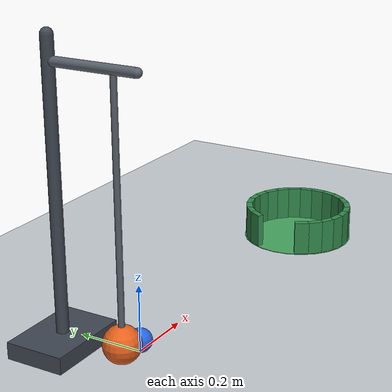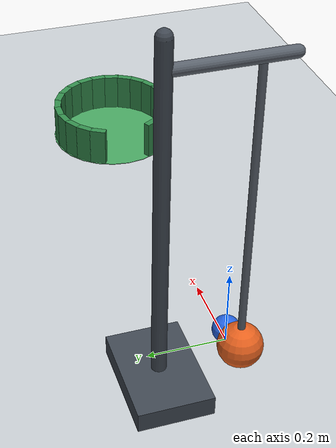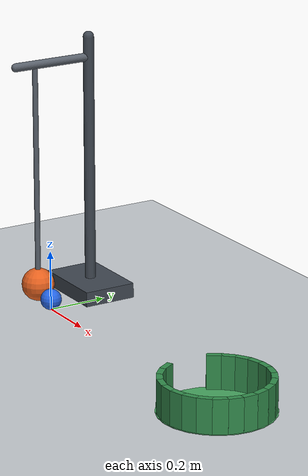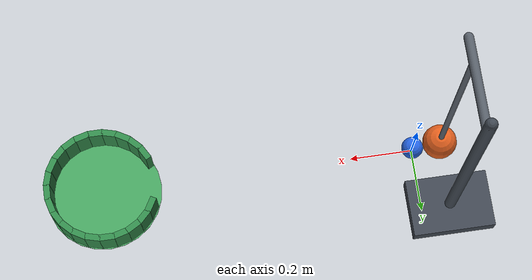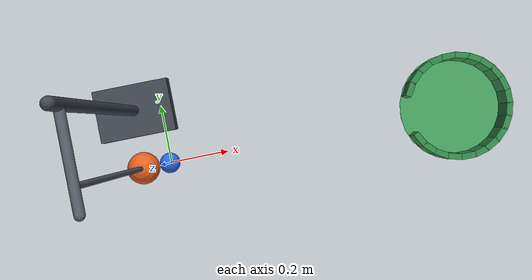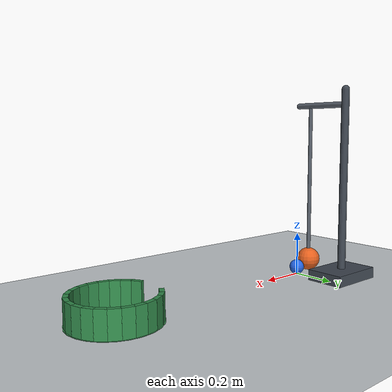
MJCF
<mujoco model="pendulum_ball_and_cup">
  <compiler angle="degree" inertiafromgeom="true"/>
  <option timestep="0.002" gravity="0 0 -9.81" integrator="implicitfast" solver="Newton" iterations="80" cone="elliptic"/>
  <visual>
    <headlight ambient="0.35 0.35 0.35" diffuse="0.65 0.65 0.65" specular="0.25 0.25 0.25"/>
  </visual>

  <worldbody>
    <light name="overhead" pos="0.4 -1.0 3.0" dir="0 0 -1" diffuse="0.8 0.8 0.8"/>
    <camera name="overview" pos="0.45 -2.7 1.65" xyaxes="1 0 0 0 0.5 0.866025"/>

    <geom name="floor" type="plane" pos="0 0 0" size="3 2 0.1" condim="6" friction="0.5 0.002 0.0002" solref="0.008 1" rgba="0.78 0.80 0.82 1"/>

    <body name="support" pos="-0.086 0 0">
      <geom name="support_foot" type="box" pos="0 0.20 0.025" size="0.13 0.09 0.025" contype="0" conaffinity="0" rgba="0.25 0.28 0.32 1"/>
      <geom name="support_post" type="capsule" fromto="0 0.20 0.05 0 0.20 0.88" size="0.018" contype="0" conaffinity="0" rgba="0.25 0.28 0.32 1"/>
      <geom name="support_axle" type="capsule" fromto="0 -0.07 0.812 0 0.20 0.812" size="0.014" contype="0" conaffinity="0" rgba="0.35 0.38 0.42 1"/>
    </body>

    <body name="pendulum" pos="-0.086 0 0.812">
      <joint name="pendulum_hinge" type="hinge" axis="0 1 0" limited="true" range="-70 70" damping="0.003" armature="0.0002"/>
      <geom name="pendulum_rod" type="capsule" fromto="0 0 0 0 0 -0.75" size="0.009" mass="0.025" contype="0" conaffinity="0" rgba="0.35 0.38 0.42 1"/>
      <geom name="pendulum_bob" type="sphere" pos="0 0 -0.75" size="0.055" mass="0.5" condim="3" friction="0.5 0.002 0.0002" solref="0.008 1" rgba="0.90 0.38 0.12 1"/>
    </body>

    <body name="ball" pos="0 0 0.035">
      <freejoint name="ball_free"/>
      <geom name="ball" type="sphere" size="0.035" mass="0.05" condim="6" friction="0.5 0.002 0.0002" solref="0.008 1" rgba="0.15 0.40 0.90 1"/>
    </body>

    <!-- The cup centre is exactly 1 m from the ball's initial centre in xy. -->
    <!-- Its bottom is flush with the floor; the missing front wall forms an entry notch. -->
    <body name="cup" pos="1 0 0">
      <geom name="cup_bottom" type="cylinder" pos="0 0 -0.006" size="0.185 0.006" condim="6" priority="1" friction="0.8 0.01 0.008" solref="0.008 1" rgba="0.28 0.65 0.38 1"/>

      <geom name="cup_wall_00" type="box" pos="0.170000 0.000000 0.055" size="0.010 0.024 0.055" euler="0 0 0" condim="6" priority="1" friction="0.8 0.01 0.008" solref="0.008 1" rgba="0.20 0.55 0.30 1"/>
      <geom name="cup_wall_01" type="box" pos="0.164207 0.043999 0.055" size="0.010 0.024 0.055" euler="0 0 15" condim="6" priority="1" friction="0.8 0.01 0.008" solref="0.008 1" rgba="0.20 0.55 0.30 1"/>
      <geom name="cup_wall_02" type="box" pos="0.147224 0.085000 0.055" size="0.010 0.024 0.055" euler="0 0 30" condim="6" priority="1" friction="0.8 0.01 0.008" solref="0.008 1" rgba="0.20 0.55 0.30 1"/>
      <geom name="cup_wall_03" type="box" pos="0.120208 0.120208 0.055" size="0.010 0.024 0.055" euler="0 0 45" condim="6" priority="1" friction="0.8 0.01 0.008" solref="0.008 1" rgba="0.20 0.55 0.30 1"/>
      <geom name="cup_wall_04" type="box" pos="0.085000 0.147224 0.055" size="0.010 0.024 0.055" euler="0 0 60" condim="6" priority="1" friction="0.8 0.01 0.008" solref="0.008 1" rgba="0.20 0.55 0.30 1"/>
      <geom name="cup_wall_05" type="box" pos="0.043999 0.164207 0.055" size="0.010 0.024 0.055" euler="0 0 75" condim="6" priority="1" friction="0.8 0.01 0.008" solref="0.008 1" rgba="0.20 0.55 0.30 1"/>
      <geom name="cup_wall_06" type="box" pos="0.000000 0.170000 0.055" size="0.010 0.024 0.055" euler="0 0 90" condim="6" priority="1" friction="0.8 0.01 0.008" solref="0.008 1" rgba="0.20 0.55 0.30 1"/>
      <geom name="cup_wall_07" type="box" pos="-0.043999 0.164207 0.055" size="0.010 0.024 0.055" euler="0 0 105" condim="6" priority="1" friction="0.8 0.01 0.008" solref="0.008 1" rgba="0.20 0.55 0.30 1"/>
      <geom name="cup_wall_08" type="box" pos="-0.085000 0.147224 0.055" size="0.010 0.024 0.055" euler="0 0 120" condim="6" priority="1" friction="0.8 0.01 0.008" solref="0.008 1" rgba="0.20 0.55 0.30 1"/>
      <geom name="cup_wall_09" type="box" pos="-0.120208 0.120208 0.055" size="0.010 0.024 0.055" euler="0 0 135" condim="6" priority="1" friction="0.8 0.01 0.008" solref="0.008 1" rgba="0.20 0.55 0.30 1"/>
      <geom name="cup_wall_10" type="box" pos="-0.147224 0.085000 0.055" size="0.010 0.024 0.055" euler="0 0 150" condim="6" priority="1" friction="0.8 0.01 0.008" solref="0.008 1" rgba="0.20 0.55 0.30 1"/>

      <geom name="cup_wall_11" type="box" pos="0.164207 -0.043999 0.055" size="0.010 0.024 0.055" euler="0 0 -15" condim="6" priority="1" friction="0.8 0.01 0.008" solref="0.008 1" rgba="0.20 0.55 0.30 1"/>
      <geom name="cup_wall_12" type="box" pos="0.147224 -0.085000 0.055" size="0.010 0.024 0.055" euler="0 0 -30" condim="6" priority="1" friction="0.8 0.01 0.008" solref="0.008 1" rgba="0.20 0.55 0.30 1"/>
      <geom name="cup_wall_13" type="box" pos="0.120208 -0.120208 0.055" size="0.010 0.024 0.055" euler="0 0 -45" condim="6" priority="1" friction="0.8 0.01 0.008" solref="0.008 1" rgba="0.20 0.55 0.30 1"/>
      <geom name="cup_wall_14" type="box" pos="0.085000 -0.147224 0.055" size="0.010 0.024 0.055" euler="0 0 -60" condim="6" priority="1" friction="0.8 0.01 0.008" solref="0.008 1" rgba="0.20 0.55 0.30 1"/>
      <geom name="cup_wall_15" type="box" pos="0.043999 -0.164207 0.055" size="0.010 0.024 0.055" euler="0 0 -75" condim="6" priority="1" friction="0.8 0.01 0.008" solref="0.008 1" rgba="0.20 0.55 0.30 1"/>
      <geom name="cup_wall_16" type="box" pos="0.000000 -0.170000 0.055" size="0.010 0.024 0.055" euler="0 0 -90" condim="6" priority="1" friction="0.8 0.01 0.008" solref="0.008 1" rgba="0.20 0.55 0.30 1"/>
      <geom name="cup_wall_17" type="box" pos="-0.043999 -0.164207 0.055" size="0.010 0.024 0.055" euler="0 0 -105" condim="6" priority="1" friction="0.8 0.01 0.008" solref="0.008 1" rgba="0.20 0.55 0.30 1"/>
      <geom name="cup_wall_18" type="box" pos="-0.085000 -0.147224 0.055" size="0.010 0.024 0.055" euler="0 0 -120" condim="6" priority="1" friction="0.8 0.01 0.008" solref="0.008 1" rgba="0.20 0.55 0.30 1"/>
      <geom name="cup_wall_19" type="box" pos="-0.120208 -0.120208 0.055" size="0.010 0.024 0.055" euler="0 0 -135" condim="6" priority="1" friction="0.8 0.01 0.008" solref="0.008 1" rgba="0.20 0.55 0.30 1"/>
      <geom name="cup_wall_20" type="box" pos="-0.147224 -0.085000 0.055" size="0.010 0.024 0.055" euler="0 0 -150" condim="6" priority="1" friction="0.8 0.01 0.008" solref="0.008 1" rgba="0.20 0.55 0.30 1"/>
    </body>
  </worldbody>

  <keyframe>
    <key name="start" qpos="0.45 0 0 0.035 1 0 0 0" qvel="0 0 0 0 0 0 0"/>
  </keyframe>
</mujoco>
